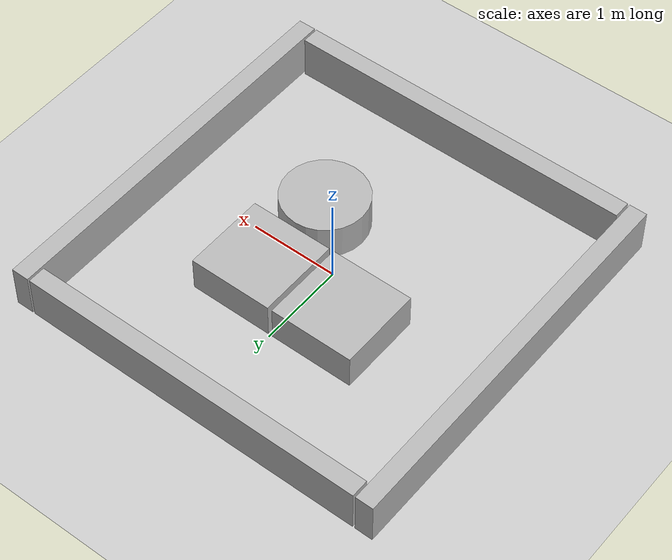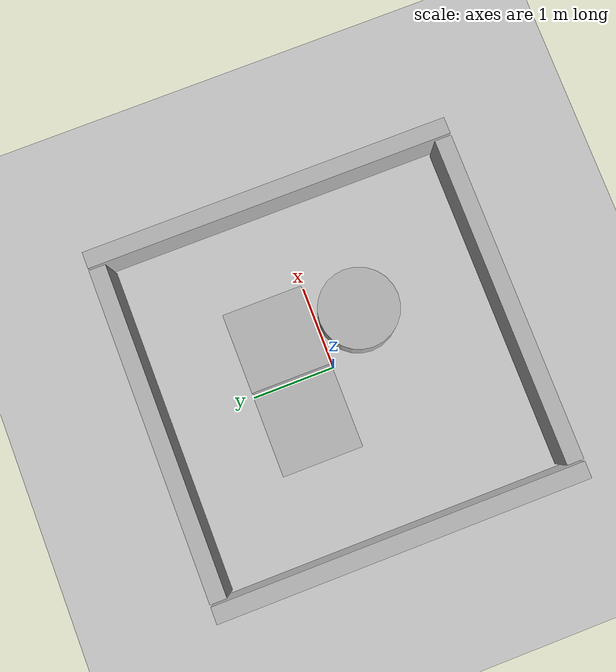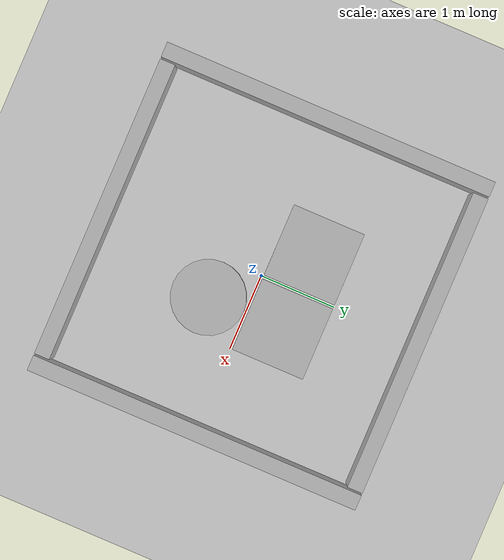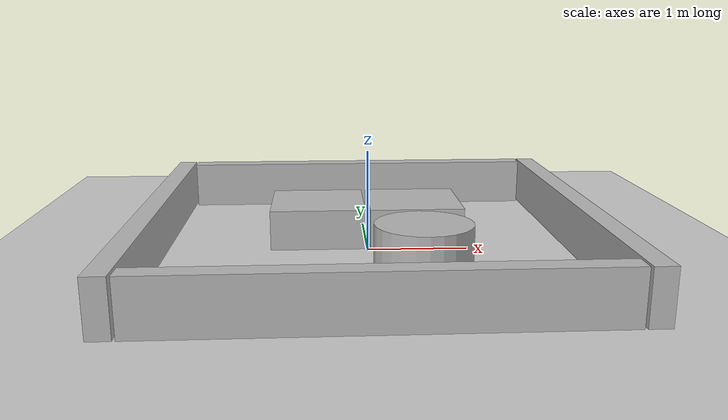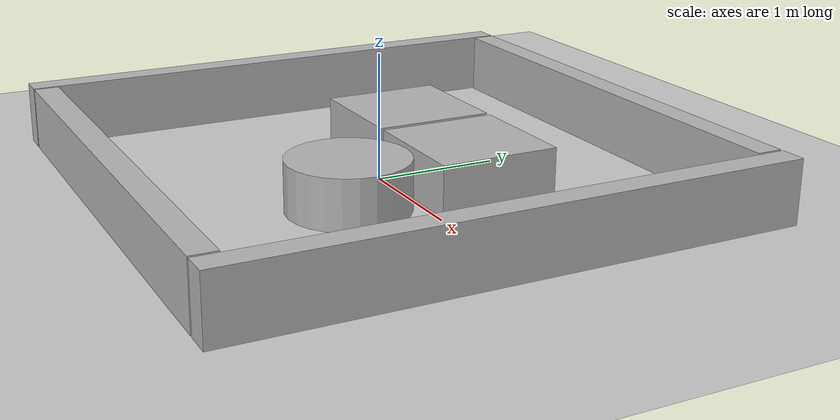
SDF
<?xml version="1.0" ?>
<sdf version="1.4">
  <!-- We use a custom world for the rrbot so that the camera angle is launched correctly -->

  <world name="default">
    <include>
      <uri>model://ground_plane</uri>
    </include>

    <!-- Global light source -->
    <include>
      <uri>model://sun</uri>
    </include>

    <!-- Focus camera on tall pendulum -->
    <gui fullscreen='0'>
      <camera name='user_camera'>
        <pose>4.927360 -4.376610 3.740080 0.000000 0.275643 2.356190</pose>
        <view_controller>orbit</view_controller>
      </camera>
    </gui>

    <model name="wall_front">
      <pose>2.1 0 0.25 0 0 0</pose>
      <link name="wall_front_link">
        <collision name="wall_front_collision">
          <geometry>
            <box>
              <size>0.2 4.4 0.5</size>
            </box>
          </geometry>
          <surface>
            <friction>
              <ode>
                <mu>20</mu>
                <mu2>20</mu2>
              </ode>
            </friction>
          </surface>
        </collision>
        <visual name="wall_front_visual">
          <geometry>
            <box>
              <size>0.2 4.4 0.5</size>
            </box>
          </geometry>
          <material>
            <script>Gazebo/WoodPallet</script>
          </material>
        </visual>
      </link>
    </model>

    <model name="wall_left">
      <pose>0 2.1 0.25 0 0 1.5708</pose>
      <link name="wall_left_link">
        <collision name="wall_left_collision">
          <geometry>
            <box>
              <size>0.2 3.95 0.5</size>
            </box>
          </geometry>
          <surface>
            <friction>
              <ode>
                <mu>20</mu>
                <mu2>20</mu2>
              </ode>
            </friction>
          </surface>
        </collision>
        <visual name="wall_left_visual">
          <geometry>
            <box>
              <size>0.2 3.95 0.5</size>
            </box>
          </geometry>
          <material>
            <script>Gazebo/WoodPallet</script>
          </material>
        </visual>
      </link>
    </model>

    <model name="wall_back">
      <pose>-2.1 0 0.25 0 0 0</pose>
      <link name="wall_back_link">
        <collision name="wall_back_collision">
          <geometry>
            <box>
              <size>0.2 4.4 0.5</size>
            </box>
          </geometry>
          <surface>
            <friction>
              <ode>
                <mu>20</mu>
                <mu2>20</mu2>
              </ode>
            </friction>
          </surface>
        </collision>
        <visual name="wall_back_visual">
          <geometry>
            <box>
              <size>0.2 4.4 0.5</size>
            </box>
          </geometry>
          <material>
            <script>Gazebo/WoodPallet</script>
          </material>
        </visual>
      </link>
    </model>

    <model name="wall_right">
      <pose>0 -2.1 0.25 0 0 -1.5708</pose>
      <link name="wall_right_link">
        <collision name="wall_right_collision">
          <geometry>
            <box>
              <size>0.2 3.95 0.5</size>
            </box>
          </geometry>
          <surface>
            <friction>
              <ode>
                <mu>20</mu>
                <mu2>20</mu2>
              </ode>
            </friction>
          </surface>
        </collision>
        <visual name="wall_right_visual">
          <geometry>
            <box>
              <size>0.2 3.95 0.5</size>
            </box>
          </geometry>
          <material>
            <script>Gazebo/WoodPallet</script>
          </material>
        </visual>
      </link>
    </model>

    <model name="obstacle_1">
      <pose>0.5 0.5 0.2 0 0 0</pose>
      <link name="obstacle_1_link">
        <collision name="obstacle_1_collision">
          <geometry>
            <box>
              <size>0.95 0.95 0.4</size>
            </box>
          </geometry>
          <surface>
            <friction>
              <ode>
                <mu>20</mu>
                <mu2>20</mu2>
              </ode>
            </friction>
          </surface>
        </collision>
        <visual name="obstacle_1_visual">
          <geometry>
            <box>
              <size>0.95 0.95 0.4</size>
            </box>
          </geometry>
          <material>
            <script>Gazebo/WoodPallet</script>
          </material>
        </visual>
      </link>
    </model>

    <model name="obstacle_2">
      <pose>-0.5 0.5 0.2 0 0 0</pose>
      <link name="obstacle_2_link">
        <collision name="obstacle_2_collision">
          <geometry>
            <box>
              <size>0.95 0.95 0.4</size>
            </box>
          </geometry>
          <surface>
            <friction>
              <ode>
                <mu>20</mu>
                <mu2>20</mu2>
              </ode>
            </friction>
          </surface>
        </collision>
        <visual name="obstacle_2_visual">
          <geometry>
            <box>
              <size>0.95 0.95 0.4</size>
            </box>
          </geometry>
          <material>
            <script>Gazebo/WoodPallet</script>
          </material>
        </visual>
      </link>
    </model>

    <model name="obstacle_3">
      <pose>0.5 -0.5 0.2 0 0 0</pose>
      <link name="obstacle_3_link">
        <collision name="obstacle_3_collision">
          <geometry>
            <cylinder>
              <radius>0.475</radius>
              <length>0.4</length>
            </cylinder>
          </geometry>
          <surface>
            <friction>
              <ode>
                <mu>20</mu>
                <mu2>20</mu2>
              </ode>
            </friction>
          </surface>
        </collision>
        <visual name="obstacle_3_visual">
          <geometry>
            <cylinder>
              <radius>0.475</radius>
              <length>0.4</length>
            </cylinder>
          </geometry>
          <material>
            <script>Gazebo/WoodPallet</script>
          </material>
        </visual>
      </link>
    </model>

  </world>
</sdf>
